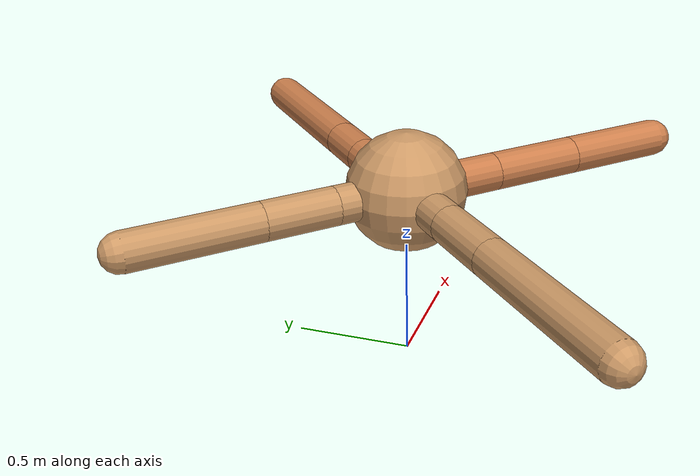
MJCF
<mujoco model="ant">
  <compiler angle="degree" coordinate="local" inertiafromgeom="true" />
  <option integrator="RK4" timestep="0.01" />
  <custom>
    <numeric data="0.0 0.0 0.55 1.0 0.0 0.0 0.0 0.0 1.0 0.0 -1.0 0.0 -1.0 0.0 1.0" name="init_qpos" />
  </custom>
  <default>
    <joint armature="1" damping="1" limited="true" />
    <geom conaffinity="0" condim="3" density="5.0" friction="1.5 0.1 0.1" margin="0.01" rgba="0.8 0.6 0.4 1" />
  </default>
  <worldbody>
    <body name="torso" pos="0 0 0.75">
      <geom name="torso_geom" pos="0 0 0" size="0.25" type="sphere" />

      <body name="front_left_leg" pos="0 0 0">
        <geom fromto="0.0 0.0 0.0 0.2854911932650577 0.2854911932650577 0.0" name="aux_1_geom" size="0.08" type="capsule" rgba=".8 .5 .3 1" />
        <body name="aux_1" pos="0.2854911932650577 0.2854911932650577 0.0">
          <joint axis="0 0 1" name="hip_1" pos="0.0 0.0 0.0" range="-40 40" type="hinge" />
          <geom fromto="0.0 0.0 0.0 0.15773335724209236 0.15773335724209236 0.0" name="left_leg_geom" size="0.08" type="capsule" rgba=".8 .5 .3 1" />
          <body pos="0.15773335724209236 0.15773335724209236 0.0" name="front_left_foot">
            <joint axis="-1 1 0" name="ankle_1" pos="0.0 0.0 0.0" range="30 100" type="hinge" />
            <geom fromto="0.0 0.0 0.0 0.5049302761412484 0.5049302761412484 0.0" name="left_ankle_geom" size="0.08" type="capsule" rgba=".8 .5 .3 1" />
          </body>
        </body>
      </body>
      <body name="front_right_leg" pos="0 0 0">
        <geom fromto="0.0 0.0 0.0 -0.22286113624068504 0.22286113624068504 0.0" name="aux_2_geom" size="0.08" type="capsule" />
        <body name="aux_2" pos="-0.22286113624068504 0.22286113624068504 0.0">
          <joint axis="0 0 1" name="hip_2" pos="0.0 0.0 0.0" range="-40 40" type="hinge" />
          <geom fromto="0.0 0.0 0.0 -0.21355603461422296 0.21355603461422296 0.0" name="right_leg_geom" size="0.08" type="capsule" />
          <body pos="-0.21355603461422296 0.21355603461422296 0.0" name="front_right_foot">
            <joint axis="1 1 0" name="ankle_2" pos="0.0 0.0 0.0" range="-100 -30" type="hinge" />
            <geom fromto="0.0 0.0 0.0 -0.3804663068940937 0.3804663068940937 0.0" name="right_ankle_geom" size="0.08" type="capsule" />
          </body>
        </body>
      </body>
      <body name="left_back_leg" pos="0 0 0">
        <geom fromto="0.0 0.0 0.0 -0.2498366792295891 -0.2498366792295891 0.0" name="aux_3_geom" size="0.08" type="capsule" />
        <body name="aux_3" pos="-0.2498366792295891 -0.2498366792295891 0.0">
          <joint axis="0 0 1" name="hip_3" pos="0.0 0.0 0.0" range="-40 40" type="hinge" />
          <geom fromto="0.0 0.0 0.0 -0.21402496872065158 -0.21402496872065158 0.0" name="back_leg_geom" size="0.08" type="capsule" />
          <body pos="-0.21402496872065158 -0.21402496872065158 0.0" name="left_back_foot">
            <joint axis="-1 1 0" name="ankle_3" pos="0.0 0.0 0.0" range="-100 -30" type="hinge" />
            <geom fromto="0.0 0.0 0.0 -0.5199579850863131 -0.5199579850863131 0.0" name="third_ankle_geom" size="0.08" type="capsule" />
          </body>
        </body>
      </body>
      <body name="right_back_leg" pos="0 0 0">
        <geom fromto="0.0 0.0 0.0 0.290941241428499 -0.290941241428499 0.0" name="aux_4_geom" size="0.08" type="capsule" rgba=".8 .5 .3 1" />
        <body name="aux_4" pos="0.290941241428499 -0.290941241428499 0.0">
          <joint axis="0 0 1" name="hip_4" pos="0.0 0.0 0.0" range="-40 40" type="hinge" />
          <geom fromto="0.0 0.0 0.0 0.2751968564447473 -0.2751968564447473 0.0" name="rightback_leg_geom" size="0.08" type="capsule" rgba=".8 .5 .3 1" />
          <body pos="0.2751968564447473 -0.2751968564447473 0.0" name="right_back_foot">
            <joint axis="1 1 0" name="ankle_4" pos="0.0 0.0 0.0" range="30 100" type="hinge" />
            <geom fromto="0.0 0.0 0.0 0.3214613525962346 -0.3214613525962346 0.0" name="fourth_ankle_geom" size="0.08" type="capsule" rgba=".8 .5 .3 1" />
          </body>
        </body>
      </body>
    </body>
  </worldbody>
  <actuator>
    <motor ctrllimited="true" ctrlrange="-1.0 1.0" joint="hip_4" gear="150" />
    <motor ctrllimited="true" ctrlrange="-1.0 1.0" joint="ankle_4" gear="150" />
    <motor ctrllimited="true" ctrlrange="-1.0 1.0" joint="hip_1" gear="150" />
    <motor ctrllimited="true" ctrlrange="-1.0 1.0" joint="ankle_1" gear="150" />
    <motor ctrllimited="true" ctrlrange="-1.0 1.0" joint="hip_2" gear="150" />
    <motor ctrllimited="true" ctrlrange="-1.0 1.0" joint="ankle_2" gear="150" />
    <motor ctrllimited="true" ctrlrange="-1.0 1.0" joint="hip_3" gear="150" />
    <motor ctrllimited="true" ctrlrange="-1.0 1.0" joint="ankle_3" gear="150" />
  </actuator>
</mujoco>
